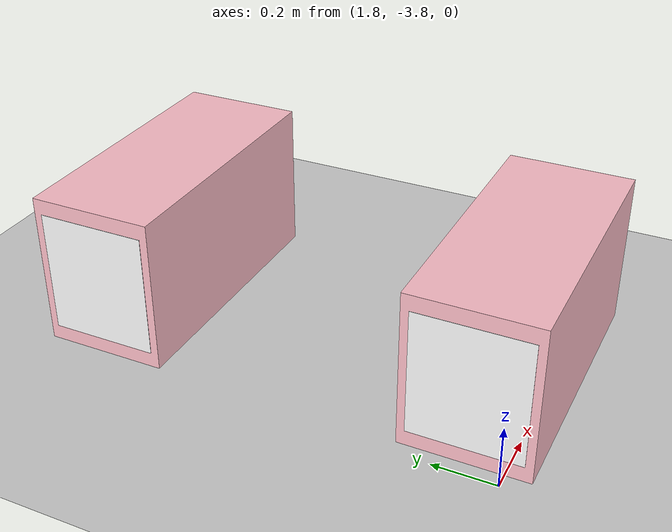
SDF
<sdf version="1.9">
 <world name="pig_pen_16units_world">
  <model name="ground_plane">
   <static>true</static>
   <link name="link">
    <collision name="collision">
     <geometry><plane><normal>0 0 1</normal><size>30 30</size></plane></geometry>
     <surface><friction><ode><mu>1.0</mu><mu2>1.0</mu2></ode></friction></surface>
    </collision>
    <visual name="visual">
     <geometry><plane><normal>0 0 1</normal><size>30 30</size></plane></geometry>
     <material>
      <ambient>0.8 0.8 0.8 1</ambient>
      <diffuse>0.8 0.8 0.8 1</diffuse>
      <specular>0.2 0.2 0.2 1</specular>
     </material>
    </visual>
   </link>
  </model>
  <include><uri>model://farm_pig</uri><name>pig11_b</name><pose>2.275 -2.495 0.27 0 0 3.1416</pose></include>
  <include><uri>model://farm_pig</uri><name>pig12_a</name><pose>2.275 -3.685 0.27 0 0 3.1416</pose></include>
 </world>
</sdf>
